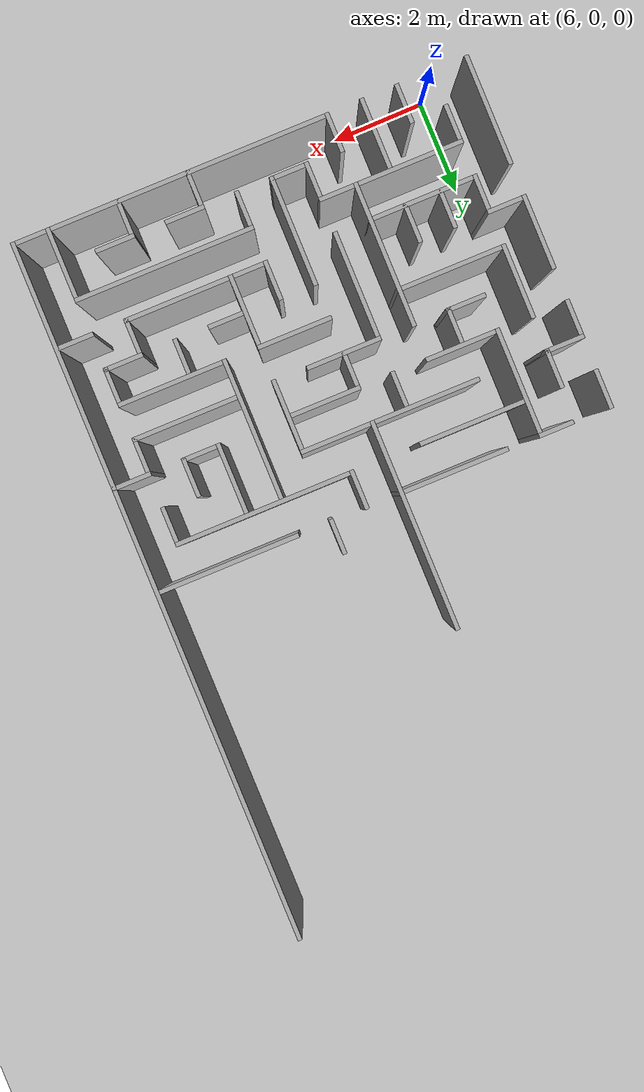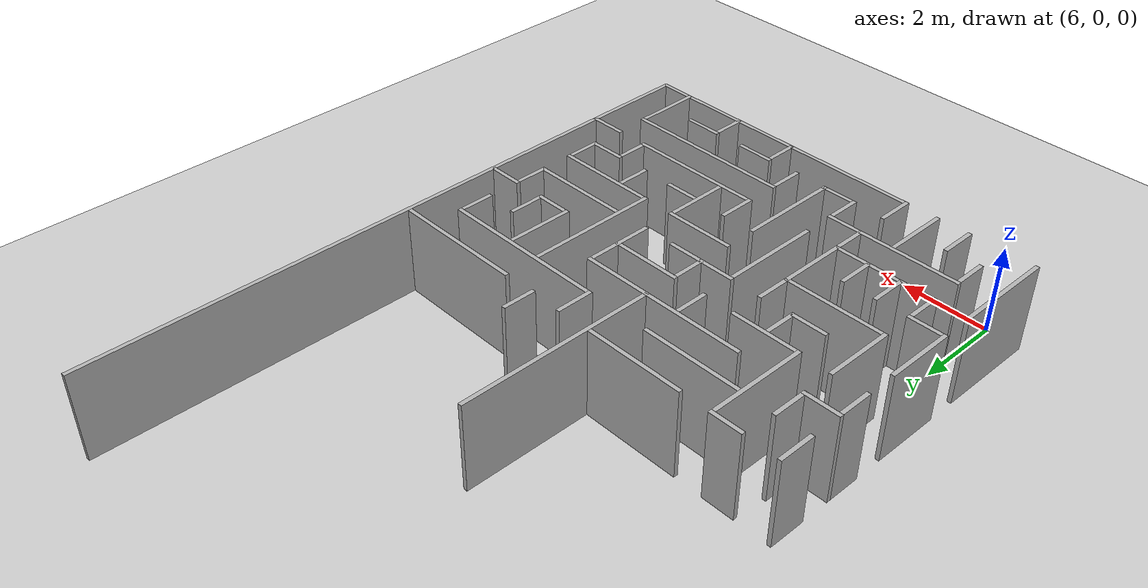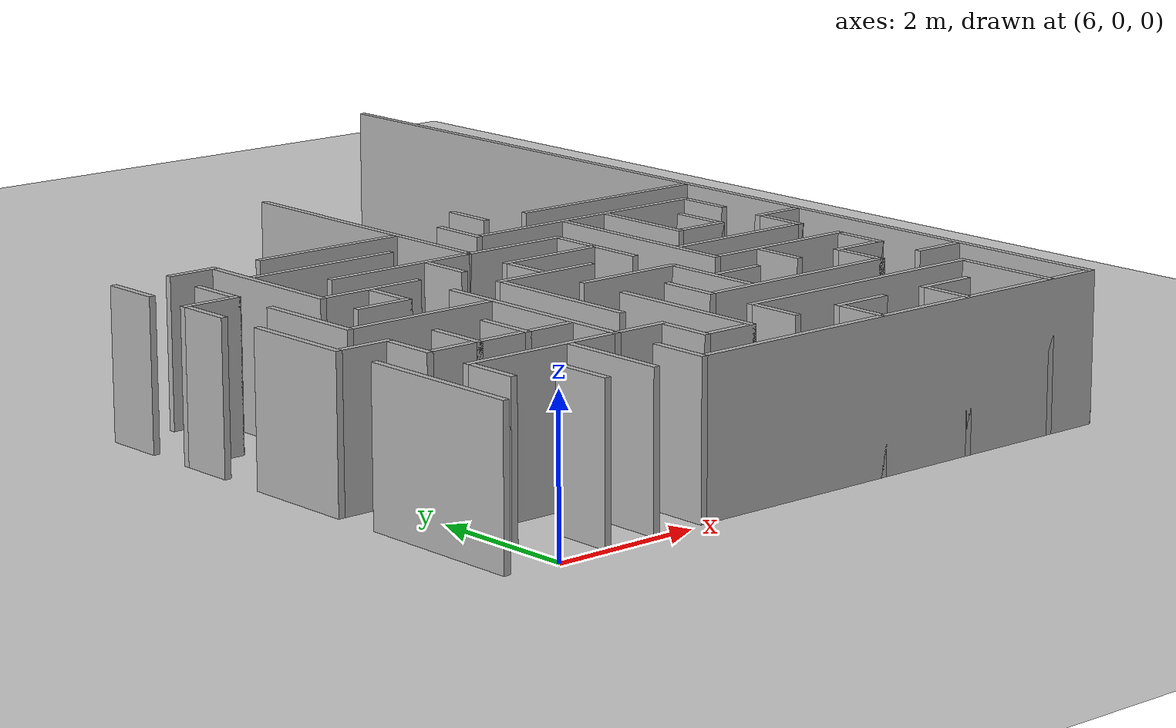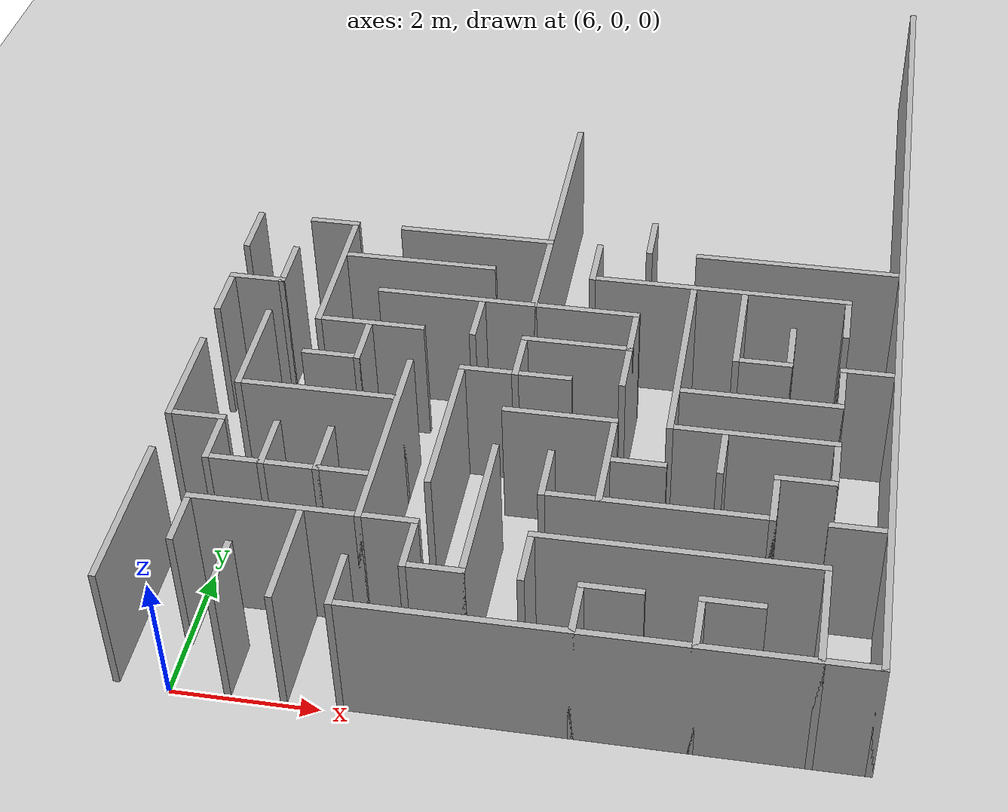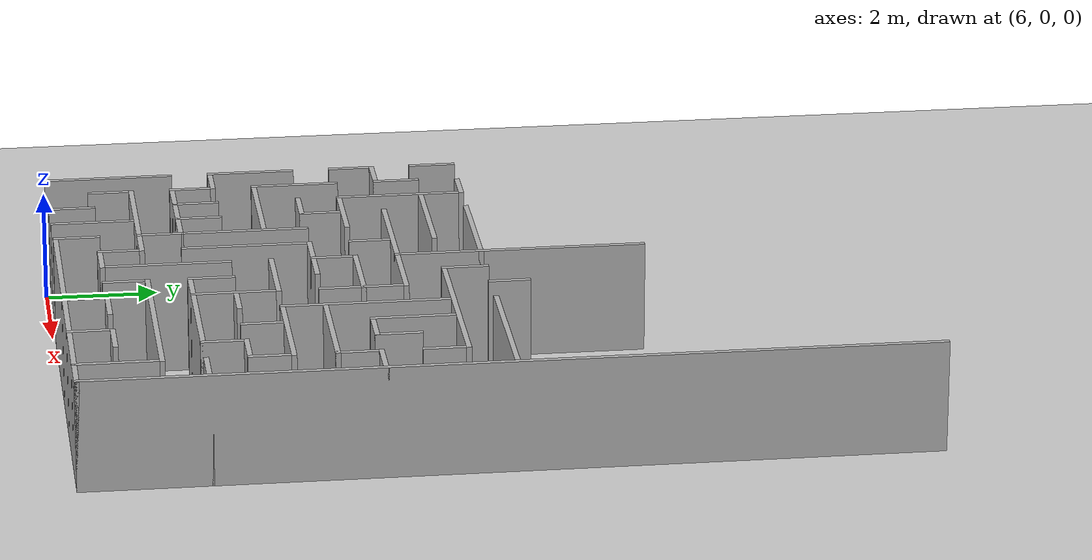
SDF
<sdf version="1.6">
 <world name="slam_world">
  <model name="ground_plane">
   <static>true</static>
   <link name="link">
    <collision name="collision">
     <geometry><plane><normal>0 0 1</normal><size>100 100</size></plane></geometry>
    </collision>
    <visual name="visual">
     <geometry><plane><normal>0 0 1</normal><size>100 100</size></plane></geometry>
     <material>
      <ambient>0.8 0.8 0.8 1</ambient>
      <diffuse>0.8 0.8 0.8 1</diffuse>
      <specular>0.8 0.8 0.8 1</specular>
     </material>
    </visual>
   </link>
  </model>
  <model name="wall_12">
   <static>true</static>
   <pose>14.907407407407408 7.453703703703704 1.0 0 0 0</pose>
   <link name="link">
    <collision name="collision">
     <geometry><box><size>0.0925925925925926 14.814814814814817 2.0</size></box></geometry>
    </collision>
    <visual name="visual">
     <geometry><box><size>0.0925925925925926 14.814814814814817 2.0</size></box></geometry>
     <material><ambient>0.5 0.5 0.5 1</ambient><diffuse>0.7 0.7 0.7 1</diffuse></material>
    </visual>
   </link>
  </model>
  <model name="wall_76">
   <static>true</static>
   <pose>9.722222222222223 8.194444444444445 1.0 0 0 0</pose>
   <link name="link">
    <collision name="collision">
     <geometry><box><size>0.0925925925925926 4.444444444444445 2.0</size></box></geometry>
    </collision>
    <visual name="visual">
     <geometry><box><size>0.0925925925925926 4.444444444444445 2.0</size></box></geometry>
     <material><ambient>0.5 0.5 0.5 1</ambient><diffuse>0.7 0.7 0.7 1</diffuse></material>
    </visual>
   </link>
  </model>
  <model name="wall_107">
   <static>true</static>
   <pose>11.203703703703704 7.824074074074074 1.0 0 0 0</pose>
   <link name="link">
    <collision name="collision">
     <geometry><box><size>0.0925925925925926 0.7407407407407408 2.0</size></box></geometry>
    </collision>
    <visual name="visual">
     <geometry><box><size>0.0925925925925926 0.7407407407407408 2.0</size></box></geometry>
     <material><ambient>0.5 0.5 0.5 1</ambient><diffuse>0.7 0.7 0.7 1</diffuse></material>
    </visual>
   </link>
  </model>
  <model name="wall_111">
   <static>true</static>
   <pose>5.277777777777779 7.129629629629631 1.0 0 0 0</pose>
   <link name="link">
    <collision name="collision">
     <geometry><box><size>0.0925925925925926 0.8333333333333334 2.0</size></box></geometry>
    </collision>
    <visual name="visual">
     <geometry><box><size>0.0925925925925926 0.8333333333333334 2.0</size></box></geometry>
     <material><ambient>0.5 0.5 0.5 1</ambient><diffuse>0.7 0.7 0.7 1</diffuse></material>
    </visual>
   </link>
  </model>
  <model name="wall_112">
   <static>true</static>
   <pose>6.435185185185186 7.500000000000001 1.0 0 0 0</pose>
   <link name="link">
    <collision name="collision">
     <geometry><box><size>0.7407407407407408 0.0925925925925926 2.0</size></box></geometry>
    </collision>
    <visual name="visual">
     <geometry><box><size>0.7407407407407408 0.0925925925925926 2.0</size></box></geometry>
     <material><ambient>0.5 0.5 0.5 1</ambient><diffuse>0.7 0.7 0.7 1</diffuse></material>
    </visual>
   </link>
  </model>
  <model name="wall_113">
   <static>true</static>
   <pose>8.611111111111112 7.500000000000001 1.0 0 0 0</pose>
   <link name="link">
    <collision name="collision">
     <geometry><box><size>2.314814814814815 0.0925925925925926 2.0</size></box></geometry>
    </collision>
    <visual name="visual">
     <geometry><box><size>2.314814814814815 0.0925925925925926 2.0</size></box></geometry>
     <material><ambient>0.5 0.5 0.5 1</ambient><diffuse>0.7 0.7 0.7 1</diffuse></material>
    </visual>
   </link>
  </model>
  <model name="wall_114">
   <static>true</static>
   <pose>10.462962962962964 7.129629629629631 1.0 0 0 0</pose>
   <link name="link">
    <collision name="collision">
     <geometry><box><size>0.0925925925925926 0.8333333333333334 2.0</size></box></geometry>
    </collision>
    <visual name="visual">
     <geometry><box><size>0.0925925925925926 0.8333333333333334 2.0</size></box></geometry>
     <material><ambient>0.5 0.5 0.5 1</ambient><diffuse>0.7 0.7 0.7 1</diffuse></material>
    </visual>
   </link>
  </model>
  <model name="wall_115">
   <static>true</static>
   <pose>13.425925925925927 7.500000000000001 1.0 0 0 0</pose>
   <link name="link">
    <collision name="collision">
     <geometry><box><size>3.055555555555556 0.0925925925925926 2.0</size></box></geometry>
    </collision>
    <visual name="visual">
     <geometry><box><size>3.055555555555556 0.0925925925925926 2.0</size></box></geometry>
     <material><ambient>0.5 0.5 0.5 1</ambient><diffuse>0.7 0.7 0.7 1</diffuse></material>
    </visual>
   </link>
  </model>
  <model name="wall_117">
   <static>true</static>
   <pose>6.7592592592592595 6.3425925925925934 1.0 0 0 0</pose>
   <link name="link">
    <collision name="collision">
     <geometry><box><size>0.0925925925925926 2.2222222222222223 2.0</size></box></geometry>
    </collision>
    <visual name="visual">
     <geometry><box><size>0.0925925925925926 2.2222222222222223 2.0</size></box></geometry>
     <material><ambient>0.5 0.5 0.5 1</ambient><diffuse>0.7 0.7 0.7 1</diffuse></material>
    </visual>
   </link>
  </model>
  <model name="wall_119">
   <static>true</static>
   <pose>6.018518518518519 6.388888888888889 1.0 0 0 0</pose>
   <link name="link">
    <collision name="collision">
     <geometry><box><size>0.0925925925925926 0.8333333333333334 2.0</size></box></geometry>
    </collision>
    <visual name="visual">
     <geometry><box><size>0.0925925925925926 0.8333333333333334 2.0</size></box></geometry>
     <material><ambient>0.5 0.5 0.5 1</ambient><diffuse>0.7 0.7 0.7 1</diffuse></material>
    </visual>
   </link>
  </model>
  <model name="wall_120">
   <static>true</static>
   <pose>7.916666666666668 6.7592592592592595 1.0 0 0 0</pose>
   <link name="link">
    <collision name="collision">
     <geometry><box><size>2.2222222222222223 0.0925925925925926 2.0</size></box></geometry>
    </collision>
    <visual name="visual">
     <geometry><box><size>2.2222222222222223 0.0925925925925926 2.0</size></box></geometry>
     <material><ambient>0.5 0.5 0.5 1</ambient><diffuse>0.7 0.7 0.7 1</diffuse></material>
    </visual>
   </link>
  </model>
  <model name="wall_121">
   <static>true</static>
   <pose>12.361111111111112 6.7592592592592595 1.0 0 0 0</pose>
   <link name="link">
    <collision name="collision">
     <geometry><box><size>3.703703703703704 0.0925925925925926 2.0</size></box></geometry>
    </collision>
    <visual name="visual">
     <geometry><box><size>3.703703703703704 0.0925925925925926 2.0</size></box></geometry>
     <material><ambient>0.5 0.5 0.5 1</ambient><diffuse>0.7 0.7 0.7 1</diffuse></material>
    </visual>
   </link>
  </model>
  <model name="wall_122">
   <static>true</static>
   <pose>11.944444444444446 5.231481481481482 1.0 0 0 0</pose>
   <link name="link">
    <collision name="collision">
     <geometry><box><size>0.0925925925925926 2.9629629629629632 2.0</size></box></geometry>
    </collision>
    <visual name="visual">
     <geometry><box><size>0.0925925925925926 2.9629629629629632 2.0</size></box></geometry>
     <material><ambient>0.5 0.5 0.5 1</ambient><diffuse>0.7 0.7 0.7 1</diffuse></material>
    </visual>
   </link>
  </model>
  <model name="wall_123">
   <static>true</static>
   <pose>12.685185185185187 5.972222222222223 1.0 0 0 0</pose>
   <link name="link">
    <collision name="collision">
     <geometry><box><size>0.0925925925925926 1.4814814814814816 2.0</size></box></geometry>
    </collision>
    <visual name="visual">
     <geometry><box><size>0.0925925925925926 1.4814814814814816 2.0</size></box></geometry>
     <material><ambient>0.5 0.5 0.5 1</ambient><diffuse>0.7 0.7 0.7 1</diffuse></material>
    </visual>
   </link>
  </model>
  <model name="wall_124">
   <static>true</static>
   <pose>14.166666666666668 6.3425925925925934 1.0 0 0 0</pose>
   <link name="link">
    <collision name="collision">
     <geometry><box><size>0.0925925925925926 0.7407407407407408 2.0</size></box></geometry>
    </collision>
    <visual name="visual">
     <geometry><box><size>0.0925925925925926 0.7407407407407408 2.0</size></box></geometry>
     <material><ambient>0.5 0.5 0.5 1</ambient><diffuse>0.7 0.7 0.7 1</diffuse></material>
    </visual>
   </link>
  </model>
  <model name="wall_128">
   <static>true</static>
   <pose>5.648148148148149 6.018518518518519 1.0 0 0 0</pose>
   <link name="link">
    <collision name="collision">
     <geometry><box><size>0.8333333333333334 0.0925925925925926 2.0</size></box></geometry>
    </collision>
    <visual name="visual">
     <geometry><box><size>0.8333333333333334 0.0925925925925926 2.0</size></box></geometry>
     <material><ambient>0.5 0.5 0.5 1</ambient><diffuse>0.7 0.7 0.7 1</diffuse></material>
    </visual>
   </link>
  </model>
  <model name="wall_129">
   <static>true</static>
   <pose>9.351851851851853 6.018518518518519 1.0 0 0 0</pose>
   <link name="link">
    <collision name="collision">
     <geometry><box><size>3.7962962962962967 0.0925925925925926 2.0</size></box></geometry>
    </collision>
    <visual name="visual">
     <geometry><box><size>3.7962962962962967 0.0925925925925926 2.0</size></box></geometry>
     <material><ambient>0.5 0.5 0.5 1</ambient><diffuse>0.7 0.7 0.7 1</diffuse></material>
    </visual>
   </link>
  </model>
  <model name="wall_130">
   <static>true</static>
   <pose>13.425925925925927 5.648148148148149 1.0 0 0 0</pose>
   <link name="link">
    <collision name="collision">
     <geometry><box><size>0.0925925925925926 0.8333333333333334 2.0</size></box></geometry>
    </collision>
    <visual name="visual">
     <geometry><box><size>0.0925925925925926 0.8333333333333334 2.0</size></box></geometry>
     <material><ambient>0.5 0.5 0.5 1</ambient><diffuse>0.7 0.7 0.7 1</diffuse></material>
    </visual>
   </link>
  </model>
  <model name="wall_132">
   <static>true</static>
   <pose>5.277777777777779 5.601851851851852 1.0 0 0 0</pose>
   <link name="link">
    <collision name="collision">
     <geometry><box><size>0.0925925925925926 0.7407407407407408 2.0</size></box></geometry>
    </collision>
    <visual name="visual">
     <geometry><box><size>0.0925925925925926 0.7407407407407408 2.0</size></box></geometry>
     <material><ambient>0.5 0.5 0.5 1</ambient><diffuse>0.7 0.7 0.7 1</diffuse></material>
    </visual>
   </link>
  </model>
  <model name="wall_133">
   <static>true</static>
   <pose>8.981481481481483 5.601851851851852 1.0 0 0 0</pose>
   <link name="link">
    <collision name="collision">
     <geometry><box><size>0.0925925925925926 0.7407407407407408 2.0</size></box></geometry>
    </collision>
    <visual name="visual">
     <geometry><box><size>0.0925925925925926 0.7407407407407408 2.0</size></box></geometry>
     <material><ambient>0.5 0.5 0.5 1</ambient><diffuse>0.7 0.7 0.7 1</diffuse></material>
    </visual>
   </link>
  </model>
  <model name="wall_134">
   <static>true</static>
   <pose>11.203703703703704 5.231481481481482 1.0 0 0 0</pose>
   <link name="link">
    <collision name="collision">
     <geometry><box><size>0.0925925925925926 1.4814814814814816 2.0</size></box></geometry>
    </collision>
    <visual name="visual">
     <geometry><box><size>0.0925925925925926 1.4814814814814816 2.0</size></box></geometry>
     <material><ambient>0.5 0.5 0.5 1</ambient><diffuse>0.7 0.7 0.7 1</diffuse></material>
    </visual>
   </link>
  </model>
  <model name="wall_138">
   <static>true</static>
   <pose>6.018518518518519 4.537037037037037 1.0 0 0 0</pose>
   <link name="link">
    <collision name="collision">
     <geometry><box><size>0.0925925925925926 1.5740740740740742 2.0</size></box></geometry>
    </collision>
    <visual name="visual">
     <geometry><box><size>0.0925925925925926 1.5740740740740742 2.0</size></box></geometry>
     <material><ambient>0.5 0.5 0.5 1</ambient><diffuse>0.7 0.7 0.7 1</diffuse></material>
    </visual>
   </link>
  </model>
  <model name="wall_139">
   <static>true</static>
   <pose>7.546296296296297 5.277777777777779 1.0 0 0 0</pose>
   <link name="link">
    <collision name="collision">
     <geometry><box><size>1.4814814814814816 0.0925925925925926 2.0</size></box></geometry>
    </collision>
    <visual name="visual">
     <geometry><box><size>1.4814814814814816 0.0925925925925926 2.0</size></box></geometry>
     <material><ambient>0.5 0.5 0.5 1</ambient><diffuse>0.7 0.7 0.7 1</diffuse></material>
    </visual>
   </link>
  </model>
  <model name="wall_140">
   <static>true</static>
   <pose>10.462962962962964 5.277777777777779 1.0 0 0 0</pose>
   <link name="link">
    <collision name="collision">
     <geometry><box><size>1.5740740740740742 0.0925925925925926 2.0</size></box></geometry>
    </collision>
    <visual name="visual">
     <geometry><box><size>1.5740740740740742 0.0925925925925926 2.0</size></box></geometry>
     <material><ambient>0.5 0.5 0.5 1</ambient><diffuse>0.7 0.7 0.7 1</diffuse></material>
    </visual>
   </link>
  </model>
  <model name="wall_141">
   <static>true</static>
   <pose>13.101851851851853 5.277777777777779 1.0 0 0 0</pose>
   <link name="link">
    <collision name="collision">
     <geometry><box><size>0.7407407407407408 0.0925925925925926 2.0</size></box></geometry>
    </collision>
    <visual name="visual">
     <geometry><box><size>0.7407407407407408 0.0925925925925926 2.0</size></box></geometry>
     <material><ambient>0.5 0.5 0.5 1</ambient><diffuse>0.7 0.7 0.7 1</diffuse></material>
    </visual>
   </link>
  </model>
  <model name="wall_142">
   <static>true</static>
   <pose>14.537037037037038 5.277777777777779 1.0 0 0 0</pose>
   <link name="link">
    <collision name="collision">
     <geometry><box><size>0.8333333333333334 0.0925925925925926 2.0</size></box></geometry>
    </collision>
    <visual name="visual">
     <geometry><box><size>0.8333333333333334 0.0925925925925926 2.0</size></box></geometry>
     <material><ambient>0.5 0.5 0.5 1</ambient><diffuse>0.7 0.7 0.7 1</diffuse></material>
    </visual>
   </link>
  </model>
  <model name="wall_146">
   <static>true</static>
   <pose>7.500000000000001 4.861111111111112 1.0 0 0 0</pose>
   <link name="link">
    <collision name="collision">
     <geometry><box><size>0.0925925925925926 0.7407407407407408 2.0</size></box></geometry>
    </collision>
    <visual name="visual">
     <geometry><box><size>0.0925925925925926 0.7407407407407408 2.0</size></box></geometry>
     <material><ambient>0.5 0.5 0.5 1</ambient><diffuse>0.7 0.7 0.7 1</diffuse></material>
    </visual>
   </link>
  </model>
  <model name="wall_147">
   <static>true</static>
   <pose>9.722222222222223 4.861111111111112 1.0 0 0 0</pose>
   <link name="link">
    <collision name="collision">
     <geometry><box><size>0.0925925925925926 0.7407407407407408 2.0</size></box></geometry>
    </collision>
    <visual name="visual">
     <geometry><box><size>0.0925925925925926 0.7407407407407408 2.0</size></box></geometry>
     <material><ambient>0.5 0.5 0.5 1</ambient><diffuse>0.7 0.7 0.7 1</diffuse></material>
    </visual>
   </link>
  </model>
  <model name="wall_148">
   <static>true</static>
   <pose>14.166666666666668 4.861111111111112 1.0 0 0 0</pose>
   <link name="link">
    <collision name="collision">
     <geometry><box><size>0.0925925925925926 0.7407407407407408 2.0</size></box></geometry>
    </collision>
    <visual name="visual">
     <geometry><box><size>0.0925925925925926 0.7407407407407408 2.0</size></box></geometry>
     <material><ambient>0.5 0.5 0.5 1</ambient><diffuse>0.7 0.7 0.7 1</diffuse></material>
    </visual>
   </link>
  </model>
  <model name="wall_151">
   <static>true</static>
   <pose>5.277777777777779 3.7962962962962967 1.0 0 0 0</pose>
   <link name="link">
    <collision name="collision">
     <geometry><box><size>0.0925925925925926 1.5740740740740742 2.0</size></box></geometry>
    </collision>
    <visual name="visual">
     <geometry><box><size>0.0925925925925926 1.5740740740740742 2.0</size></box></geometry>
     <material><ambient>0.5 0.5 0.5 1</ambient><diffuse>0.7 0.7 0.7 1</diffuse></material>
    </visual>
   </link>
  </model>
  <model name="wall_152">
   <static>true</static>
   <pose>7.129629629629631 4.537037037037037 1.0 0 0 0</pose>
   <link name="link">
    <collision name="collision">
     <geometry><box><size>0.8333333333333334 0.0925925925925926 2.0</size></box></geometry>
    </collision>
    <visual name="visual">
     <geometry><box><size>0.8333333333333334 0.0925925925925926 2.0</size></box></geometry>
     <material><ambient>0.5 0.5 0.5 1</ambient><diffuse>0.7 0.7 0.7 1</diffuse></material>
    </visual>
   </link>
  </model>
  <model name="wall_153">
   <static>true</static>
   <pose>8.240740740740742 3.055555555555556 1.0 0 0 0</pose>
   <link name="link">
    <collision name="collision">
     <geometry><box><size>0.0925925925925926 3.055555555555556 2.0</size></box></geometry>
    </collision>
    <visual name="visual">
     <geometry><box><size>0.0925925925925926 3.055555555555556 2.0</size></box></geometry>
     <material><ambient>0.5 0.5 0.5 1</ambient><diffuse>0.7 0.7 0.7 1</diffuse></material>
    </visual>
   </link>
  </model>
  <model name="wall_154">
   <static>true</static>
   <pose>9.722222222222223 4.537037037037037 1.0 0 0 0</pose>
   <link name="link">
    <collision name="collision">
     <geometry><box><size>1.5740740740740742 0.0925925925925926 2.0</size></box></geometry>
    </collision>
    <visual name="visual">
     <geometry><box><size>1.5740740740740742 0.0925925925925926 2.0</size></box></geometry>
     <material><ambient>0.5 0.5 0.5 1</ambient><diffuse>0.7 0.7 0.7 1</diffuse></material>
    </visual>
   </link>
  </model>
  <model name="wall_155">
   <static>true</static>
   <pose>13.101851851851853 4.537037037037037 1.0 0 0 0</pose>
   <link name="link">
    <collision name="collision">
     <geometry><box><size>2.2222222222222223 0.0925925925925926 2.0</size></box></geometry>
    </collision>
    <visual name="visual">
     <geometry><box><size>2.2222222222222223 0.0925925925925926 2.0</size></box></geometry>
     <material><ambient>0.5 0.5 0.5 1</ambient><diffuse>0.7 0.7 0.7 1</diffuse></material>
    </visual>
   </link>
  </model>
  <model name="wall_156">
   <static>true</static>
   <pose>8.981481481481483 3.3796296296296298 1.0 0 0 0</pose>
   <link name="link">
    <collision name="collision">
     <geometry><box><size>0.0925925925925926 2.2222222222222223 2.0</size></box></geometry>
    </collision>
    <visual name="visual">
     <geometry><box><size>0.0925925925925926 2.2222222222222223 2.0</size></box></geometry>
     <material><ambient>0.5 0.5 0.5 1</ambient><diffuse>0.7 0.7 0.7 1</diffuse></material>
    </visual>
   </link>
  </model>
  <model name="wall_160">
   <static>true</static>
   <pose>7.1759259259259265 3.7962962962962967 1.0 0 0 0</pose>
   <link name="link">
    <collision name="collision">
     <geometry><box><size>2.2222222222222223 0.0925925925925926 2.0</size></box></geometry>
    </collision>
    <visual name="visual">
     <geometry><box><size>2.2222222222222223 0.0925925925925926 2.0</size></box></geometry>
     <material><ambient>0.5 0.5 0.5 1</ambient><diffuse>0.7 0.7 0.7 1</diffuse></material>
    </visual>
   </link>
  </model>
  <model name="wall_161">
   <static>true</static>
   <pose>10.462962962962964 3.7962962962962967 1.0 0 0 0</pose>
   <link name="link">
    <collision name="collision">
     <geometry><box><size>1.5740740740740742 0.0925925925925926 2.0</size></box></geometry>
    </collision>
    <visual name="visual">
     <geometry><box><size>1.5740740740740742 0.0925925925925926 2.0</size></box></geometry>
     <material><ambient>0.5 0.5 0.5 1</ambient><diffuse>0.7 0.7 0.7 1</diffuse></material>
    </visual>
   </link>
  </model>
  <model name="wall_162">
   <static>true</static>
   <pose>13.101851851851853 3.7962962962962967 1.0 0 0 0</pose>
   <link name="link">
    <collision name="collision">
     <geometry><box><size>2.2222222222222223 0.0925925925925926 2.0</size></box></geometry>
    </collision>
    <visual name="visual">
     <geometry><box><size>2.2222222222222223 0.0925925925925926 2.0</size></box></geometry>
     <material><ambient>0.5 0.5 0.5 1</ambient><diffuse>0.7 0.7 0.7 1</diffuse></material>
    </visual>
   </link>
  </model>
  <model name="wall_163">
   <static>true</static>
   <pose>11.203703703703704 3.0092592592592595 1.0 0 0 0</pose>
   <link name="link">
    <collision name="collision">
     <geometry><box><size>0.0925925925925926 1.4814814814814816 2.0</size></box></geometry>
    </collision>
    <visual name="visual">
     <geometry><box><size>0.0925925925925926 1.4814814814814816 2.0</size></box></geometry>
     <material><ambient>0.5 0.5 0.5 1</ambient><diffuse>0.7 0.7 0.7 1</diffuse></material>
    </visual>
   </link>
  </model>
  <model name="wall_164">
   <static>true</static>
   <pose>12.685185185185187 3.3796296296296298 1.0 0 0 0</pose>
   <link name="link">
    <collision name="collision">
     <geometry><box><size>0.0925925925925926 0.7407407407407408 2.0</size></box></geometry>
    </collision>
    <visual name="visual">
     <geometry><box><size>0.0925925925925926 0.7407407407407408 2.0</size></box></geometry>
     <material><ambient>0.5 0.5 0.5 1</ambient><diffuse>0.7 0.7 0.7 1</diffuse></material>
    </visual>
   </link>
  </model>
  <model name="wall_165">
   <static>true</static>
   <pose>14.166666666666668 3.3796296296296298 1.0 0 0 0</pose>
   <link name="link">
    <collision name="collision">
     <geometry><box><size>0.0925925925925926 0.7407407407407408 2.0</size></box></geometry>
    </collision>
    <visual name="visual">
     <geometry><box><size>0.0925925925925926 0.7407407407407408 2.0</size></box></geometry>
     <material><ambient>0.5 0.5 0.5 1</ambient><diffuse>0.7 0.7 0.7 1</diffuse></material>
    </visual>
   </link>
  </model>
  <model name="wall_169">
   <static>true</static>
   <pose>5.694444444444445 3.055555555555556 1.0 0 0 0</pose>
   <link name="link">
    <collision name="collision">
     <geometry><box><size>0.7407407407407408 0.0925925925925926 2.0</size></box></geometry>
    </collision>
    <visual name="visual">
     <geometry><box><size>0.7407407407407408 0.0925925925925926 2.0</size></box></geometry>
     <material><ambient>0.5 0.5 0.5 1</ambient><diffuse>0.7 0.7 0.7 1</diffuse></material>
    </visual>
   </link>
  </model>
  <model name="wall_170">
   <static>true</static>
   <pose>6.7592592592592595 2.6851851851851856 1.0 0 0 0</pose>
   <link name="link">
    <collision name="collision">
     <geometry><box><size>0.0925925925925926 0.8333333333333334 2.0</size></box></geometry>
    </collision>
    <visual name="visual">
     <geometry><box><size>0.0925925925925926 0.8333333333333334 2.0</size></box></geometry>
     <material><ambient>0.5 0.5 0.5 1</ambient><diffuse>0.7 0.7 0.7 1</diffuse></material>
    </visual>
   </link>
  </model>
  <model name="wall_171">
   <static>true</static>
   <pose>7.500000000000001 2.6851851851851856 1.0 0 0 0</pose>
   <link name="link">
    <collision name="collision">
     <geometry><box><size>0.0925925925925926 0.8333333333333334 2.0</size></box></geometry>
    </collision>
    <visual name="visual">
     <geometry><box><size>0.0925925925925926 0.8333333333333334 2.0</size></box></geometry>
     <material><ambient>0.5 0.5 0.5 1</ambient><diffuse>0.7 0.7 0.7 1</diffuse></material>
    </visual>
   </link>
  </model>
  <model name="wall_172">
   <static>true</static>
   <pose>9.722222222222223 1.9444444444444446 1.0 0 0 0</pose>
   <link name="link">
    <collision name="collision">
     <geometry><box><size>0.0925925925925926 2.314814814814815 2.0</size></box></geometry>
    </collision>
    <visual name="visual">
     <geometry><box><size>0.0925925925925926 2.314814814814815 2.0</size></box></geometry>
     <material><ambient>0.5 0.5 0.5 1</ambient><diffuse>0.7 0.7 0.7 1</diffuse></material>
    </visual>
   </link>
  </model>
  <model name="wall_173">
   <static>true</static>
   <pose>10.462962962962964 2.6851851851851856 1.0 0 0 0</pose>
   <link name="link">
    <collision name="collision">
     <geometry><box><size>0.0925925925925926 0.8333333333333334 2.0</size></box></geometry>
    </collision>
    <visual name="visual">
     <geometry><box><size>0.0925925925925926 0.8333333333333334 2.0</size></box></geometry>
     <material><ambient>0.5 0.5 0.5 1</ambient><diffuse>0.7 0.7 0.7 1</diffuse></material>
    </visual>
   </link>
  </model>
  <model name="wall_174">
   <static>true</static>
   <pose>11.620370370370372 3.055555555555556 1.0 0 0 0</pose>
   <link name="link">
    <collision name="collision">
     <geometry><box><size>0.7407407407407408 0.0925925925925926 2.0</size></box></geometry>
    </collision>
    <visual name="visual">
     <geometry><box><size>0.7407407407407408 0.0925925925925926 2.0</size></box></geometry>
     <material><ambient>0.5 0.5 0.5 1</ambient><diffuse>0.7 0.7 0.7 1</diffuse></material>
    </visual>
   </link>
  </model>
  <model name="wall_175">
   <static>true</static>
   <pose>13.796296296296298 3.055555555555556 1.0 0 0 0</pose>
   <link name="link">
    <collision name="collision">
     <geometry><box><size>0.8333333333333334 0.0925925925925926 2.0</size></box></geometry>
    </collision>
    <visual name="visual">
     <geometry><box><size>0.8333333333333334 0.0925925925925926 2.0</size></box></geometry>
     <material><ambient>0.5 0.5 0.5 1</ambient><diffuse>0.7 0.7 0.7 1</diffuse></material>
    </visual>
   </link>
  </model>
  <model name="wall_176">
   <static>true</static>
   <pose>6.018518518518519 2.6388888888888893 1.0 0 0 0</pose>
   <link name="link">
    <collision name="collision">
     <geometry><box><size>0.0925925925925926 0.7407407407407408 2.0</size></box></geometry>
    </collision>
    <visual name="visual">
     <geometry><box><size>0.0925925925925926 0.7407407407407408 2.0</size></box></geometry>
     <material><ambient>0.5 0.5 0.5 1</ambient><diffuse>0.7 0.7 0.7 1</diffuse></material>
    </visual>
   </link>
  </model>
  <model name="wall_177">
   <static>true</static>
   <pose>13.425925925925927 2.6388888888888893 1.0 0 0 0</pose>
   <link name="link">
    <collision name="collision">
     <geometry><box><size>0.0925925925925926 0.7407407407407408 2.0</size></box></geometry>
    </collision>
    <visual name="visual">
     <geometry><box><size>0.0925925925925926 0.7407407407407408 2.0</size></box></geometry>
     <material><ambient>0.5 0.5 0.5 1</ambient><diffuse>0.7 0.7 0.7 1</diffuse></material>
    </visual>
   </link>
  </model>
  <model name="wall_180">
   <static>true</static>
   <pose>5.277777777777779 1.2037037037037037 1.0 0 0 0</pose>
   <link name="link">
    <collision name="collision">
     <geometry><box><size>0.0925925925925926 2.314814814814815 2.0</size></box></geometry>
    </collision>
    <visual name="visual">
     <geometry><box><size>0.0925925925925926 2.314814814814815 2.0</size></box></geometry>
     <material><ambient>0.5 0.5 0.5 1</ambient><diffuse>0.7 0.7 0.7 1</diffuse></material>
    </visual>
   </link>
  </model>
  <model name="wall_181">
   <static>true</static>
   <pose>7.1759259259259265 2.314814814814815 1.0 0 0 0</pose>
   <link name="link">
    <collision name="collision">
     <geometry><box><size>2.2222222222222223 0.0925925925925926 2.0</size></box></geometry>
    </collision>
    <visual name="visual">
     <geometry><box><size>2.2222222222222223 0.0925925925925926 2.0</size></box></geometry>
     <material><ambient>0.5 0.5 0.5 1</ambient><diffuse>0.7 0.7 0.7 1</diffuse></material>
    </visual>
   </link>
  </model>
  <model name="wall_182">
   <static>true</static>
   <pose>11.990740740740742 2.314814814814815 1.0 0 0 0</pose>
   <link name="link">
    <collision name="collision">
     <geometry><box><size>2.9629629629629632 0.0925925925925926 2.0</size></box></geometry>
    </collision>
    <visual name="visual">
     <geometry><box><size>2.9629629629629632 0.0925925925925926 2.0</size></box></geometry>
     <material><ambient>0.5 0.5 0.5 1</ambient><diffuse>0.7 0.7 0.7 1</diffuse></material>
    </visual>
   </link>
  </model>
  <model name="wall_183">
   <static>true</static>
   <pose>14.537037037037038 2.314814814814815 1.0 0 0 0</pose>
   <link name="link">
    <collision name="collision">
     <geometry><box><size>0.8333333333333334 0.0925925925925926 2.0</size></box></geometry>
    </collision>
    <visual name="visual">
     <geometry><box><size>0.8333333333333334 0.0925925925925926 2.0</size></box></geometry>
     <material><ambient>0.5 0.5 0.5 1</ambient><diffuse>0.7 0.7 0.7 1</diffuse></material>
    </visual>
   </link>
  </model>
  <model name="wall_188">
   <static>true</static>
   <pose>7.500000000000001 1.5740740740740742 1.0 0 0 0</pose>
   <link name="link">
    <collision name="collision">
     <geometry><box><size>3.055555555555556 0.0925925925925926 2.0</size></box></geometry>
    </collision>
    <visual name="visual">
     <geometry><box><size>3.055555555555556 0.0925925925925926 2.0</size></box></geometry>
     <material><ambient>0.5 0.5 0.5 1</ambient><diffuse>0.7 0.7 0.7 1</diffuse></material>
    </visual>
   </link>
  </model>
  <model name="wall_189">
   <static>true</static>
   <pose>12.314814814814817 1.5740740740740742 1.0 0 0 0</pose>
   <link name="link">
    <collision name="collision">
     <geometry><box><size>3.7962962962962967 0.0925925925925926 2.0</size></box></geometry>
    </collision>
    <visual name="visual">
     <geometry><box><size>3.7962962962962967 0.0925925925925926 2.0</size></box></geometry>
     <material><ambient>0.5 0.5 0.5 1</ambient><diffuse>0.7 0.7 0.7 1</diffuse></material>
    </visual>
   </link>
  </model>
  <model name="wall_191">
   <static>true</static>
   <pose>6.018518518518519 1.1574074074074074 1.0 0 0 0</pose>
   <link name="link">
    <collision name="collision">
     <geometry><box><size>0.0925925925925926 0.7407407407407408 2.0</size></box></geometry>
    </collision>
    <visual name="visual">
     <geometry><box><size>0.0925925925925926 0.7407407407407408 2.0</size></box></geometry>
     <material><ambient>0.5 0.5 0.5 1</ambient><diffuse>0.7 0.7 0.7 1</diffuse></material>
    </visual>
   </link>
  </model>
  <model name="wall_192">
   <static>true</static>
   <pose>7.500000000000001 0.7870370370370371 1.0 0 0 0</pose>
   <link name="link">
    <collision name="collision">
     <geometry><box><size>0.0925925925925926 1.4814814814814816 2.0</size></box></geometry>
    </collision>
    <visual name="visual">
     <geometry><box><size>0.0925925925925926 1.4814814814814816 2.0</size></box></geometry>
     <material><ambient>0.5 0.5 0.5 1</ambient><diffuse>0.7 0.7 0.7 1</diffuse></material>
    </visual>
   </link>
  </model>
  <model name="wall_193">
   <static>true</static>
   <pose>8.981481481481483 1.1574074074074074 1.0 0 0 0</pose>
   <link name="link">
    <collision name="collision">
     <geometry><box><size>0.0925925925925926 0.7407407407407408 2.0</size></box></geometry>
    </collision>
    <visual name="visual">
     <geometry><box><size>0.0925925925925926 0.7407407407407408 2.0</size></box></geometry>
     <material><ambient>0.5 0.5 0.5 1</ambient><diffuse>0.7 0.7 0.7 1</diffuse></material>
    </visual>
   </link>
  </model>
  <model name="wall_194">
   <static>true</static>
   <pose>10.462962962962964 1.1574074074074074 1.0 0 0 0</pose>
   <link name="link">
    <collision name="collision">
     <geometry><box><size>0.0925925925925926 0.7407407407407408 2.0</size></box></geometry>
    </collision>
    <visual name="visual">
     <geometry><box><size>0.0925925925925926 0.7407407407407408 2.0</size></box></geometry>
     <material><ambient>0.5 0.5 0.5 1</ambient><diffuse>0.7 0.7 0.7 1</diffuse></material>
    </visual>
   </link>
  </model>
  <model name="wall_195">
   <static>true</static>
   <pose>14.166666666666668 0.7870370370370371 1.0 0 0 0</pose>
   <link name="link">
    <collision name="collision">
     <geometry><box><size>0.0925925925925926 1.4814814814814816 2.0</size></box></geometry>
    </collision>
    <visual name="visual">
     <geometry><box><size>0.0925925925925926 1.4814814814814816 2.0</size></box></geometry>
     <material><ambient>0.5 0.5 0.5 1</ambient><diffuse>0.7 0.7 0.7 1</diffuse></material>
    </visual>
   </link>
  </model>
  <model name="wall_198">
   <static>true</static>
   <pose>6.7592592592592595 0.462962962962963 1.0 0 0 0</pose>
   <link name="link">
    <collision name="collision">
     <geometry><box><size>0.0925925925925926 0.8333333333333334 2.0</size></box></geometry>
    </collision>
    <visual name="visual">
     <geometry><box><size>0.0925925925925926 0.8333333333333334 2.0</size></box></geometry>
     <material><ambient>0.5 0.5 0.5 1</ambient><diffuse>0.7 0.7 0.7 1</diffuse></material>
    </visual>
   </link>
  </model>
  <model name="wall_199">
   <static>true</static>
   <pose>8.240740740740742 0.462962962962963 1.0 0 0 0</pose>
   <link name="link">
    <collision name="collision">
     <geometry><box><size>0.0925925925925926 0.8333333333333334 2.0</size></box></geometry>
    </collision>
    <visual name="visual">
     <geometry><box><size>0.0925925925925926 0.8333333333333334 2.0</size></box></geometry>
     <material><ambient>0.5 0.5 0.5 1</ambient><diffuse>0.7 0.7 0.7 1</diffuse></material>
    </visual>
   </link>
  </model>
  <model name="wall_200">
   <static>true</static>
   <pose>9.398148148148149 0.8333333333333334 1.0 0 0 0</pose>
   <link name="link">
    <collision name="collision">
     <geometry><box><size>0.7407407407407408 0.0925925925925926 2.0</size></box></geometry>
    </collision>
    <visual name="visual">
     <geometry><box><size>0.7407407407407408 0.0925925925925926 2.0</size></box></geometry>
     <material><ambient>0.5 0.5 0.5 1</ambient><diffuse>0.7 0.7 0.7 1</diffuse></material>
    </visual>
   </link>
  </model>
  <model name="wall_201">
   <static>true</static>
   <pose>11.574074074074074 0.8333333333333334 1.0 0 0 0</pose>
   <link name="link">
    <collision name="collision">
     <geometry><box><size>0.8333333333333334 0.0925925925925926 2.0</size></box></geometry>
    </collision>
    <visual name="visual">
     <geometry><box><size>0.8333333333333334 0.0925925925925926 2.0</size></box></geometry>
     <material><ambient>0.5 0.5 0.5 1</ambient><diffuse>0.7 0.7 0.7 1</diffuse></material>
    </visual>
   </link>
  </model>
  <model name="wall_202">
   <static>true</static>
   <pose>13.055555555555557 0.8333333333333334 1.0 0 0 0</pose>
   <link name="link">
    <collision name="collision">
     <geometry><box><size>0.8333333333333334 0.0925925925925926 2.0</size></box></geometry>
    </collision>
    <visual name="visual">
     <geometry><box><size>0.8333333333333334 0.0925925925925926 2.0</size></box></geometry>
     <material><ambient>0.5 0.5 0.5 1</ambient><diffuse>0.7 0.7 0.7 1</diffuse></material>
    </visual>
   </link>
  </model>
  <model name="wall_204">
   <static>true</static>
   <pose>11.203703703703704 0.4166666666666667 1.0 0 0 0</pose>
   <link name="link">
    <collision name="collision">
     <geometry><box><size>0.0925925925925926 0.7407407407407408 2.0</size></box></geometry>
    </collision>
    <visual name="visual">
     <geometry><box><size>0.0925925925925926 0.7407407407407408 2.0</size></box></geometry>
     <material><ambient>0.5 0.5 0.5 1</ambient><diffuse>0.7 0.7 0.7 1</diffuse></material>
    </visual>
   </link>
  </model>
  <model name="wall_205">
   <static>true</static>
   <pose>12.685185185185187 0.4166666666666667 1.0 0 0 0</pose>
   <link name="link">
    <collision name="collision">
     <geometry><box><size>0.0925925925925926 0.7407407407407408 2.0</size></box></geometry>
    </collision>
    <visual name="visual">
     <geometry><box><size>0.0925925925925926 0.7407407407407408 2.0</size></box></geometry>
     <material><ambient>0.5 0.5 0.5 1</ambient><diffuse>0.7 0.7 0.7 1</diffuse></material>
    </visual>
   </link>
  </model>
  <model name="wall_207">
   <static>true</static>
   <pose>11.620370370370372 0.0925925925925926 1.0 0 0 0</pose>
   <link name="link">
    <collision name="collision">
     <geometry><box><size>6.666666666666667 0.0925925925925926 2.0</size></box></geometry>
    </collision>
    <visual name="visual">
     <geometry><box><size>6.666666666666667 0.0925925925925926 2.0</size></box></geometry>
     <material><ambient>0.5 0.5 0.5 1</ambient><diffuse>0.7 0.7 0.7 1</diffuse></material>
    </visual>
   </link>
  </model>
 </world>
</sdf>
